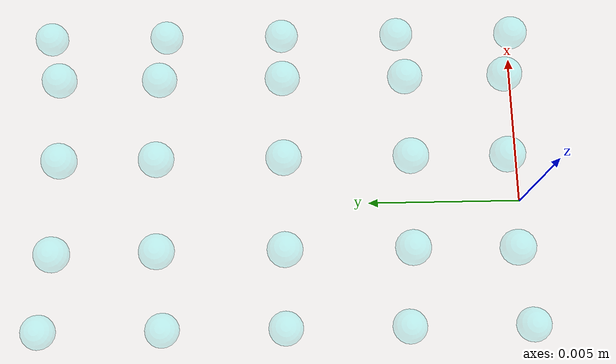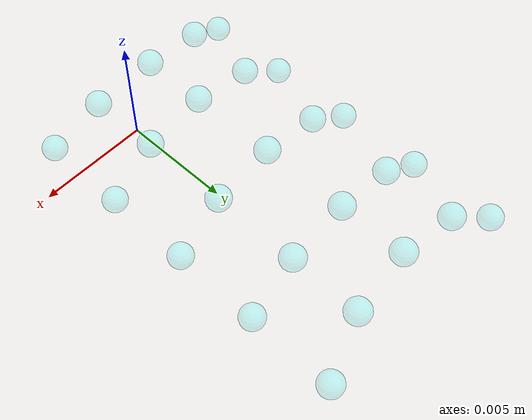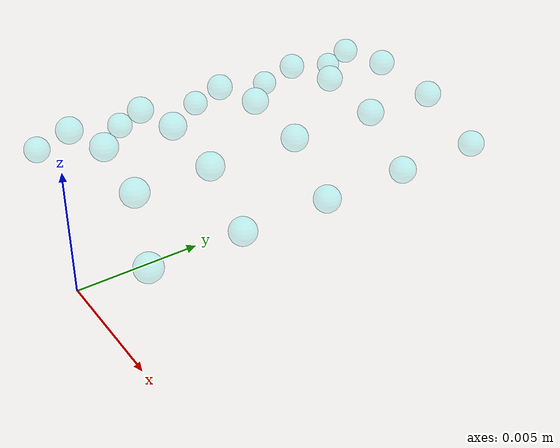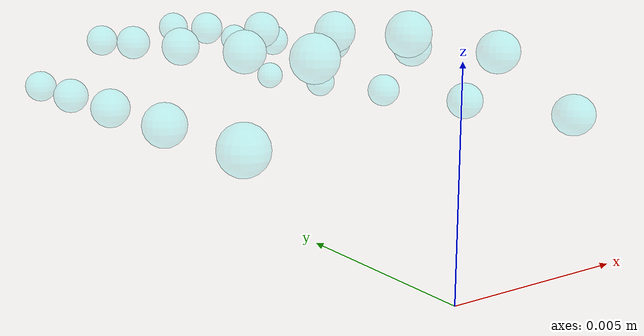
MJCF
<mujoco>
    <default>
        <default class="tactile_cell">
            <geom type="sphere" size="0.0005" contype="0" conaffinity="0" condim="4" friction="0 0 0" margin="0.0003" solref="0.001 1" solimp="0.98 0.999 0.0005 0.5 2" rgba="0 1 1 0.2" density="500"/>
            <site type="sphere" size="0.0005" rgba="0 0 0 0"/>
        </default>
    </default>

    <worldbody>
        <body name="tactile_sensor" pos="0 0 0">
            <body name="cell_01" pos="-0.00447460887 0.00075830123 0.00355238929"><geom name="touch_geom_01" class="tactile_cell"/><site name="touch_point_01" class="tactile_cell"/></body>
            <body name="cell_02" pos="-0.00447460790 0.00427915026 0.00355239087"><geom name="touch_geom_02" class="tactile_cell"/><site name="touch_point_02" class="tactile_cell"/></body>
            <body name="cell_03" pos="-0.00447460648 0.00779999960 0.00355239318"><geom name="touch_geom_03" class="tactile_cell"/><site name="touch_point_03" class="tactile_cell"/></body>
            <body name="cell_04" pos="-0.00447460505 0.01132084894 0.00355239549"><geom name="touch_geom_04" class="tactile_cell"/><site name="touch_point_04" class="tactile_cell"/></body>
            <body name="cell_05" pos="-0.00447460359 0.01484169824 0.00355239788"><geom name="touch_geom_05" class="tactile_cell"/><site name="touch_point_05" class="tactile_cell"/></body>
            <body name="cell_06" pos="-0.00253563500 0.00140591643 0.00506517231"><geom name="touch_geom_06" class="tactile_cell"/><site name="touch_point_06" class="tactile_cell"/></body>
            <body name="cell_07" pos="-0.00253561768 0.01419409739 0.00506517876"><geom name="touch_geom_07" class="tactile_cell"/><site name="touch_point_07" class="tactile_cell"/></body>
            <body name="cell_08" pos="-0.00249934586 0.00427915015 0.00507853251"><geom name="touch_geom_08" class="tactile_cell"/><site name="touch_point_08" class="tactile_cell"/></body>
            <body name="cell_09" pos="-0.00249934338 0.01132084844 0.00507853342"><geom name="touch_geom_09" class="tactile_cell"/><site name="touch_point_09" class="tactile_cell"/></body>
            <body name="cell_10" pos="-0.00249933351 0.00779999934 0.00507853701"><geom name="touch_geom_10" class="tactile_cell"/><site name="touch_point_10" class="tactile_cell"/></body>
            <body name="cell_11" pos="0.00000000198 0.01400005624 0.00550000006"><geom name="touch_geom_11" class="tactile_cell"/><site name="touch_point_11" class="tactile_cell"/></body>
            <body name="cell_12" pos="0.00000000198 0.01132084804 0.00550000006"><geom name="touch_geom_12" class="tactile_cell"/><site name="touch_point_12" class="tactile_cell"/></body>
            <body name="cell_13" pos="0.00000000199 0.00779999907 0.00550000006"><geom name="touch_geom_13" class="tactile_cell"/><site name="touch_point_13" class="tactile_cell"/></body>
            <body name="cell_14" pos="0.00000000199 0.00427915006 0.00550000006"><geom name="touch_geom_14" class="tactile_cell"/><site name="touch_point_14" class="tactile_cell"/></body>
            <body name="cell_15" pos="0.00000000200 0.00159994376 0.00550000006"><geom name="touch_geom_15" class="tactile_cell"/><site name="touch_point_15" class="tactile_cell"/></body>
            <body name="cell_16" pos="0.00249933351 0.00779999934 0.00507853701"><geom name="touch_geom_16" class="tactile_cell"/><site name="touch_point_16" class="tactile_cell"/></body>
            <body name="cell_17" pos="0.00249934338 0.01132084844 0.00507853342"><geom name="touch_geom_17" class="tactile_cell"/><site name="touch_point_17" class="tactile_cell"/></body>
            <body name="cell_18" pos="0.00249934586 0.00427915015 0.00507853251"><geom name="touch_geom_18" class="tactile_cell"/><site name="touch_point_18" class="tactile_cell"/></body>
            <body name="cell_19" pos="0.00253561768 0.01419409739 0.00506517876"><geom name="touch_geom_19" class="tactile_cell"/><site name="touch_point_19" class="tactile_cell"/></body>
            <body name="cell_20" pos="0.00253563500 0.00140591643 0.00506517231"><geom name="touch_geom_20" class="tactile_cell"/><site name="touch_point_20" class="tactile_cell"/></body>
            <body name="cell_21" pos="0.00447460359 0.01484169824 0.00355239788"><geom name="touch_geom_21" class="tactile_cell"/><site name="touch_point_21" class="tactile_cell"/></body>
            <body name="cell_22" pos="0.00447460505 0.01132084894 0.00355239549"><geom name="touch_geom_22" class="tactile_cell"/><site name="touch_point_22" class="tactile_cell"/></body>
            <body name="cell_23" pos="0.00447460648 0.00779999960 0.00355239318"><geom name="touch_geom_23" class="tactile_cell"/><site name="touch_point_23" class="tactile_cell"/></body>
            <body name="cell_24" pos="0.00447460790 0.00427915026 0.00355239087"><geom name="touch_geom_24" class="tactile_cell"/><site name="touch_point_24" class="tactile_cell"/></body>
            <body name="cell_25" pos="0.00447460887 0.00075830123 0.00355238929"><geom name="touch_geom_25" class="tactile_cell"/><site name="touch_point_25" class="tactile_cell"/></body>
        </body>
    </worldbody>

    <sensor>
        <force name="force_sensor_01" site="touch_point_01" cutoff="1000" noise="0.005"/>
        <force name="force_sensor_02" site="touch_point_02" cutoff="1000" noise="0.005"/>
        <force name="force_sensor_03" site="touch_point_03" cutoff="1000" noise="0.005"/>
        <force name="force_sensor_04" site="touch_point_04" cutoff="1000" noise="0.005"/>
        <force name="force_sensor_05" site="touch_point_05" cutoff="1000" noise="0.005"/>
        <force name="force_sensor_06" site="touch_point_06" cutoff="1000" noise="0.005"/>
        <force name="force_sensor_07" site="touch_point_07" cutoff="1000" noise="0.005"/>
        <force name="force_sensor_08" site="touch_point_08" cutoff="1000" noise="0.005"/>
        <force name="force_sensor_09" site="touch_point_09" cutoff="1000" noise="0.005"/>
        <force name="force_sensor_10" site="touch_point_10" cutoff="1000" noise="0.005"/>
        <force name="force_sensor_11" site="touch_point_11" cutoff="1000" noise="0.005"/>
        <force name="force_sensor_12" site="touch_point_12" cutoff="1000" noise="0.005"/>
        <force name="force_sensor_13" site="touch_point_13" cutoff="1000" noise="0.005"/>
        <force name="force_sensor_14" site="touch_point_14" cutoff="1000" noise="0.005"/>
        <force name="force_sensor_15" site="touch_point_15" cutoff="1000" noise="0.005"/>
        <force name="force_sensor_16" site="touch_point_16" cutoff="1000" noise="0.005"/>
        <force name="force_sensor_17" site="touch_point_17" cutoff="1000" noise="0.005"/>
        <force name="force_sensor_18" site="touch_point_18" cutoff="1000" noise="0.005"/>
        <force name="force_sensor_19" site="touch_point_19" cutoff="1000" noise="0.005"/>
        <force name="force_sensor_20" site="touch_point_20" cutoff="1000" noise="0.005"/>
        <force name="force_sensor_21" site="touch_point_21" cutoff="1000" noise="0.005"/>
        <force name="force_sensor_22" site="touch_point_22" cutoff="1000" noise="0.005"/>
        <force name="force_sensor_23" site="touch_point_23" cutoff="1000" noise="0.005"/>
        <force name="force_sensor_24" site="touch_point_24" cutoff="1000" noise="0.005"/>
        <force name="force_sensor_25" site="touch_point_25" cutoff="1000" noise="0.005"/>

        <torque name="torque_sensor_01" site="touch_point_01" cutoff="1000" noise="0.002"/>
        <torque name="torque_sensor_02" site="touch_point_02" cutoff="1000" noise="0.002"/>
        <torque name="torque_sensor_03" site="touch_point_03" cutoff="1000" noise="0.002"/>
        <torque name="torque_sensor_04" site="touch_point_04" cutoff="1000" noise="0.002"/>
        <torque name="torque_sensor_05" site="touch_point_05" cutoff="1000" noise="0.002"/>
        <torque name="torque_sensor_06" site="touch_point_06" cutoff="1000" noise="0.002"/>
        <torque name="torque_sensor_07" site="touch_point_07" cutoff="1000" noise="0.002"/>
        <torque name="torque_sensor_08" site="touch_point_08" cutoff="1000" noise="0.002"/>
        <torque name="torque_sensor_09" site="touch_point_09" cutoff="1000" noise="0.002"/>
        <torque name="torque_sensor_10" site="touch_point_10" cutoff="1000" noise="0.002"/>
        <torque name="torque_sensor_11" site="touch_point_11" cutoff="1000" noise="0.002"/>
        <torque name="torque_sensor_12" site="touch_point_12" cutoff="1000" noise="0.002"/>
        <torque name="torque_sensor_13" site="touch_point_13" cutoff="1000" noise="0.002"/>
        <torque name="torque_sensor_14" site="touch_point_14" cutoff="1000" noise="0.002"/>
        <torque name="torque_sensor_15" site="touch_point_15" cutoff="1000" noise="0.002"/>
        <torque name="torque_sensor_16" site="touch_point_16" cutoff="1000" noise="0.002"/>
        <torque name="torque_sensor_17" site="touch_point_17" cutoff="1000" noise="0.002"/>
        <torque name="torque_sensor_18" site="touch_point_18" cutoff="1000" noise="0.002"/>
        <torque name="torque_sensor_19" site="touch_point_19" cutoff="1000" noise="0.002"/>
        <torque name="torque_sensor_20" site="touch_point_20" cutoff="1000" noise="0.002"/>
        <torque name="torque_sensor_21" site="touch_point_21" cutoff="1000" noise="0.002"/>
        <torque name="torque_sensor_22" site="touch_point_22" cutoff="1000" noise="0.002"/>
        <torque name="torque_sensor_23" site="touch_point_23" cutoff="1000" noise="0.002"/>
        <torque name="torque_sensor_24" site="touch_point_24" cutoff="1000" noise="0.002"/>
        <torque name="torque_sensor_25" site="touch_point_25" cutoff="1000" noise="0.002"/>
    </sensor>
</mujoco>
